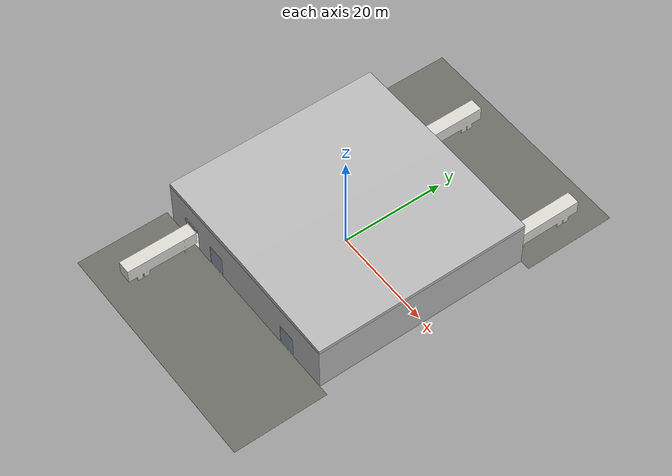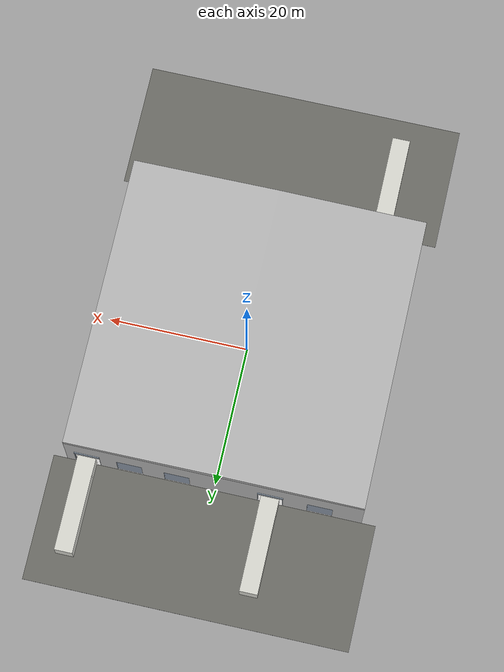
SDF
<sdf version="1.7">
 <world name="default">
  <gravity>0 0 -9.8</gravity>
  <physics name="default_physics" type="ignored">
   <max_step_size>0.001</max_step_size>
   <real_time_factor>1</real_time_factor>
  </physics>
  <plugin filename="ignition-gazebo-physics-system" name="gz::sim::systems::Physics"/>
  <plugin filename="ignition-gazebo-user-commands-system" name="gz::sim::systems::UserCommands"/>
  <plugin filename="ignition-gazebo-scene-broadcaster-system" name="gz::sim::systems::SceneBroadcaster"/>
  <plugin filename="ignition-gazebo-sensors-system" name="gz::sim::systems::Sensors">
   <render_engine>ogre2</render_engine>
  </plugin>
  <plugin filename="ignition-gazebo-imu-system" name="gz::sim::systems::Imu"/>
  <scene>
   <ambient>0.7 0.7 0.7 1</ambient>
   <background>0.25 0.28 0.32 1</background>
   <shadows>false</shadows>
   <grid>false</grid>
  </scene>
  <light name="warehouse_fill" type="directional">
   <cast_shadows>false</cast_shadows>
   <pose>0 0 20 0 0 0</pose>
   <diffuse>0.7 0.7 0.7 1</diffuse>
   <specular>0.15 0.15 0.15 1</specular>
   <direction>-0.4 0.3 -0.9</direction>
  </light>
  <light name="Warehouse_CeilingLight_003" type="point">
   <pose>0 0 8.5 0 0 0</pose>
   <diffuse>0.8 0.8 0.8 1</diffuse>
   <specular>0.2 0.2 0.2 1</specular>
   <attenuation>
    <range>80</range>
    <constant>0.4</constant>
    <linear>0.01</linear>
    <quadratic>0.001</quadratic>
   </attenuation>
   <cast_shadows>false</cast_shadows>
   <direction>0 0 -1</direction>
  </light>
  <plugin filename="LogisticsScheduler" name="logistics::LogisticsScheduler">
   <carrier name="aws_robomaker_warehouse_PalletJackB_01_217">
    <speed>1.30</speed>
    <turn_rate>1.5</turn_rate>
    <carry_offset>1.30 0 0</carry_offset>
    <handling_time>5.0</handling_time>
    <start>2.0</start>
    <job>
     <pick load="aws_robomaker_warehouse_ClutteringC_01_108">1.570796</pick>
     <goto reverse="true">-17.600 9.300</goto>
     <goto>-13.300 9.300</goto>
     <goto>-13.300 4.700</goto>
     <goto>-15.000 4.700</goto>
     <drop heading="3.141593">-16.300 4.700 0.000000</drop>
     <goto reverse="true">-13.300 4.700</goto>
     <goto>-13.300 1.500</goto>
     <goto>-15.000 1.500</goto>
     <pick load="aws_robomaker_warehouse_ClutteringA_01_202">3.141593</pick>
     <goto reverse="true">-13.300 1.500</goto>
     <goto>-13.300 9.300</goto>
     <goto>-17.600 9.300</goto>
     <goto>-17.600 11.900</goto>
     <drop heading="1.570796">-17.600 13.200 0.000000</drop>
     <goto reverse="true">-17.600 9.300</goto>
     <goto>-13.300 9.300</goto>
     <goto>-13.300 4.700</goto>
     <goto>-15.000 4.700</goto>
     <pick load="aws_robomaker_warehouse_ClutteringC_01_108">3.141593</pick>
     <goto reverse="true">-13.300 4.700</goto>
     <goto>-13.300 1.500</goto>
     <goto>-15.000 1.500</goto>
     <drop heading="3.141593">-16.300 1.500 0.000000</drop>
     <goto reverse="true">-13.300 1.500</goto>
     <goto>-13.300 9.300</goto>
     <goto>-17.600 9.300</goto>
     <goto>-17.600 11.900</goto>
     <pick load="aws_robomaker_warehouse_ClutteringA_01_202">1.570796</pick>
     <goto reverse="true">-17.600 9.300</goto>
     <goto>-13.300 9.300</goto>
     <goto>-13.300 4.700</goto>
     <goto>-15.000 4.700</goto>
     <drop heading="3.141593">-16.300 4.700 0.000000</drop>
     <goto reverse="true">-13.300 4.700</goto>
     <goto>-13.300 1.500</goto>
     <goto>-15.000 1.500</goto>
     <pick load="aws_robomaker_warehouse_ClutteringC_01_108">3.141593</pick>
     <goto reverse="true">-13.300 1.500</goto>
     <goto>-13.300 9.300</goto>
     <goto>-17.600 9.300</goto>
     <goto>-17.600 11.900</goto>
     <drop heading="1.570796">-17.600 13.200 0.000000</drop>
     <goto reverse="true">-17.600 9.300</goto>
     <goto>-13.300 9.300</goto>
     <goto>-13.300 4.700</goto>
     <goto>-15.000 4.700</goto>
     <pick load="aws_robomaker_warehouse_ClutteringA_01_202">3.141593</pick>
     <goto reverse="true">-13.300 4.700</goto>
     <goto>-13.300 1.500</goto>
     <goto>-15.000 1.500</goto>
     <drop heading="3.141593">-16.300 1.500 0.000000</drop>
     <goto reverse="true">-13.300 1.500</goto>
     <goto>-13.300 9.300</goto>
     <goto>-17.600 9.300</goto>
     <goto>-17.600 11.900</goto>
    </job>
   </carrier>
   <carrier name="aws_robomaker_warehouse_PalletJackB_01_218">
    <speed>1.30</speed>
    <turn_rate>1.5</turn_rate>
    <carry_offset>1.30 0 0</carry_offset>
    <handling_time>5.0</handling_time>
    <start>9.0</start>
    <job>
     <pick load="aws_robomaker_warehouse_ClutteringC_01_200">3.141593</pick>
     <goto reverse="true">-13.300 -1.700</goto>
     <goto>-13.300 -4.900</goto>
     <goto>-15.000 -4.900</goto>
     <drop heading="3.141593">-16.300 -4.900 0.000000</drop>
     <goto reverse="true">-13.300 -4.900</goto>
     <goto>-13.300 -9.400</goto>
     <goto>-17.600 -9.400</goto>
     <goto>-17.600 -13.900</goto>
     <pick load="aws_robomaker_warehouse_ClutteringD_01_173">-1.570796</pick>
     <goto reverse="true">-17.600 -9.400</goto>
     <goto>-13.300 -9.400</goto>
     <goto>-13.300 -1.700</goto>
     <goto>-15.000 -1.700</goto>
     <drop heading="3.141593">-16.300 -1.700 0.000000</drop>
     <goto reverse="true">-13.300 -1.700</goto>
     <goto>-13.300 -4.900</goto>
     <goto>-15.000 -4.900</goto>
     <pick load="aws_robomaker_warehouse_ClutteringC_01_200">3.141593</pick>
     <goto reverse="true">-13.300 -4.900</goto>
     <goto>-13.300 -9.400</goto>
     <goto>-17.600 -9.400</goto>
     <goto>-17.600 -13.900</goto>
     <drop heading="-1.570796">-17.600 -15.200 0.000000</drop>
     <goto reverse="true">-17.600 -9.400</goto>
     <goto>-13.300 -9.400</goto>
     <goto>-13.300 -1.700</goto>
     <goto>-15.000 -1.700</goto>
     <pick load="aws_robomaker_warehouse_ClutteringD_01_173">3.141593</pick>
     <goto reverse="true">-13.300 -1.700</goto>
     <goto>-13.300 -4.900</goto>
     <goto>-15.000 -4.900</goto>
     <drop heading="3.141593">-16.300 -4.900 0.000000</drop>
     <goto reverse="true">-13.300 -4.900</goto>
     <goto>-13.300 -9.400</goto>
     <goto>-17.600 -9.400</goto>
     <goto>-17.600 -13.900</goto>
     <pick load="aws_robomaker_warehouse_ClutteringC_01_200">-1.570796</pick>
     <goto reverse="true">-17.600 -9.400</goto>
     <goto>-13.300 -9.400</goto>
     <goto>-13.300 -1.700</goto>
     <goto>-15.000 -1.700</goto>
     <drop heading="3.141593">-16.300 -1.700 0.000000</drop>
     <goto reverse="true">-13.300 -1.700</goto>
     <goto>-13.300 -4.900</goto>
     <goto>-15.000 -4.900</goto>
     <pick load="aws_robomaker_warehouse_ClutteringD_01_173">3.141593</pick>
     <goto reverse="true">-13.300 -4.900</goto>
     <goto>-13.300 -9.400</goto>
     <goto>-17.600 -9.400</goto>
     <goto>-17.600 -13.900</goto>
     <drop heading="-1.570796">-17.600 -15.200 0.000000</drop>
     <goto reverse="true">-17.600 -9.400</goto>
     <goto>-13.300 -9.400</goto>
     <goto>-13.300 -1.700</goto>
     <goto>-15.000 -1.700</goto>
    </job>
   </carrier>
   <carrier name="aws_robomaker_warehouse_PalletJackB_01_219">
    <speed>1.20</speed>
    <turn_rate>1.5</turn_rate>
    <carry_offset>1.30 0 0</carry_offset>
    <handling_time>4.0</handling_time>
    <start>5.0</start>
    <job>
     <pick load="aws_robomaker_warehouse_Bucket_01_170">-1.570796</pick>
     <goto reverse="true">-3.300 -9.750</goto>
     <goto>10.780 -9.750</goto>
     <goto>10.780 -15.000</goto>
     <goto>11.000 -15.000</goto>
     <drop heading="-1.570796">11.000 -16.300 0.000000</drop>
     <goto>11.000 -15.000</goto>
     <goto>8.500 -15.000</goto>
     <pick load="aws_robomaker_warehouse_Bucket_01_188">-1.570796</pick>
     <goto>8.500 -15.000</goto>
     <goto>10.780 -15.000</goto>
     <goto>10.780 -9.750</goto>
     <goto>-3.300 -9.750</goto>
     <goto>-3.300 -10.550</goto>
     <drop heading="-1.570796">-3.300 -11.850 0.000000</drop>
     <goto reverse="true">-3.300 -9.750</goto>
     <goto>10.780 -9.750</goto>
     <goto>10.780 -15.000</goto>
     <goto>11.000 -15.000</goto>
     <pick load="aws_robomaker_warehouse_Bucket_01_170">-1.570796</pick>
     <goto>11.000 -15.000</goto>
     <goto>8.500 -15.000</goto>
     <drop heading="-1.570796">8.500 -16.300 0.000000</drop>
     <goto>8.500 -15.000</goto>
     <goto>10.780 -15.000</goto>
     <goto>10.780 -9.750</goto>
     <goto>-3.300 -9.750</goto>
     <goto>-3.300 -10.550</goto>
     <pick load="aws_robomaker_warehouse_Bucket_01_188">-1.570796</pick>
     <goto reverse="true">-3.300 -9.750</goto>
     <goto>10.780 -9.750</goto>
     <goto>10.780 -15.000</goto>
     <goto>11.000 -15.000</goto>
     <drop heading="-1.570796">11.000 -16.300 0.000000</drop>
     <goto>11.000 -15.000</goto>
     <goto>8.500 -15.000</goto>
     <pick load="aws_robomaker_warehouse_Bucket_01_170">-1.570796</pick>
     <goto>8.500 -15.000</goto>
     <goto>10.780 -15.000</goto>
     <goto>10.780 -9.750</goto>
     <goto>-3.300 -9.750</goto>
     <goto>-3.300 -10.550</goto>
     <drop heading="-1.570796">-3.300 -11.850 0.000000</drop>
     <goto reverse="true">-3.300 -9.750</goto>
     <goto>10.780 -9.750</goto>
     <goto>10.780 -15.000</goto>
     <goto>11.000 -15.000</goto>
     <pick load="aws_robomaker_warehouse_Bucket_01_188">-1.570796</pick>
     <goto>11.000 -15.000</goto>
     <goto>8.500 -15.000</goto>
     <drop heading="-1.570796">8.500 -16.300 0.000000</drop>
     <goto>8.500 -15.000</goto>
     <goto>10.780 -15.000</goto>
     <goto>10.780 -9.750</goto>
     <goto>-3.300 -9.750</goto>
     <goto>-3.300 -10.550</goto>
    </job>
   </carrier>
   <carrier name="aws_robomaker_warehouse_PalletJackB_01_220">
    <speed>1.20</speed>
    <turn_rate>1.5</turn_rate>
    <carry_offset>1.30 0 0</carry_offset>
    <handling_time>4.0</handling_time>
    <start>13.0</start>
    <job>
     <pick load="aws_robomaker_warehouse_Bucket_01_172">-1.570796</pick>
     <goto reverse="true">1.900 -9.750</goto>
     <goto>15.340 -9.750</goto>
     <goto>15.340 -15.000</goto>
     <goto>14.000 -15.000</goto>
     <drop heading="-1.570796">14.000 -16.300 0.000000</drop>
     <goto>14.000 -15.000</goto>
     <goto>16.600 -15.000</goto>
     <pick load="aws_robomaker_warehouse_Bucket_01_189">-1.570796</pick>
     <goto>16.600 -15.000</goto>
     <goto>15.340 -15.000</goto>
     <goto>15.340 -9.750</goto>
     <goto>1.900 -9.750</goto>
     <goto>1.900 -10.550</goto>
     <drop heading="-1.570796">1.900 -11.850 0.000000</drop>
     <goto reverse="true">1.900 -9.750</goto>
     <goto>15.340 -9.750</goto>
     <goto>15.340 -15.000</goto>
     <goto>14.000 -15.000</goto>
     <pick load="aws_robomaker_warehouse_Bucket_01_172">-1.570796</pick>
     <goto>14.000 -15.000</goto>
     <goto>16.600 -15.000</goto>
     <drop heading="-1.570796">16.600 -16.300 0.000000</drop>
     <goto>16.600 -15.000</goto>
     <goto>15.340 -15.000</goto>
     <goto>15.340 -9.750</goto>
     <goto>1.900 -9.750</goto>
     <goto>1.900 -10.550</goto>
     <pick load="aws_robomaker_warehouse_Bucket_01_189">-1.570796</pick>
     <goto reverse="true">1.900 -9.750</goto>
     <goto>15.340 -9.750</goto>
     <goto>15.340 -15.000</goto>
     <goto>14.000 -15.000</goto>
     <drop heading="-1.570796">14.000 -16.300 0.000000</drop>
     <goto>14.000 -15.000</goto>
     <goto>16.600 -15.000</goto>
     <pick load="aws_robomaker_warehouse_Bucket_01_172">-1.570796</pick>
     <goto>16.600 -15.000</goto>
     <goto>15.340 -15.000</goto>
     <goto>15.340 -9.750</goto>
     <goto>1.900 -9.750</goto>
     <goto>1.900 -10.550</goto>
     <drop heading="-1.570796">1.900 -11.850 0.000000</drop>
     <goto reverse="true">1.900 -9.750</goto>
     <goto>15.340 -9.750</goto>
     <goto>15.340 -15.000</goto>
     <goto>14.000 -15.000</goto>
     <pick load="aws_robomaker_warehouse_Bucket_01_189">-1.570796</pick>
     <goto>14.000 -15.000</goto>
     <goto>16.600 -15.000</goto>
     <drop heading="-1.570796">16.600 -16.300 0.000000</drop>
     <goto>16.600 -15.000</goto>
     <goto>15.340 -15.000</goto>
     <goto>15.340 -9.750</goto>
     <goto>1.900 -9.750</goto>
     <goto>1.900 -10.550</goto>
    </job>
   </carrier>
  </plugin>
  <include>
   <uri>model://aws_robomaker_warehouse_RoofB_01</uri>
   <name>aws_robomaker_warehouse_RoofB_01_001</name>
  </include>
  <include>
   <uri>model://aws_robomaker_warehouse_GroundB_01_plain</uri>
   <name>aws_robomaker_warehouse_GroundB_01_plain_001</name>
   <pose>0.0 0.0 -0.090092 0 0 0</pose>
  </include>
  <include>
   <uri>model://aws_robomaker_warehouse_WallB_01_docks_i</uri>
   <name>aws_robomaker_warehouse_WallB_01_001</name>
  </include>
  <include>
   <uri>model://aws_robomaker_warehouse_DockDoor_01</uri>
   <name>aws_robomaker_warehouse_DockDoor_01_204</name>
   <pose>-15.000000 20.774500 0.000000 0 0 0.000000</pose>
  </include>
  <include>
   <uri>model://aws_robomaker_warehouse_DockDoorOpen_01</uri>
   <name>aws_robomaker_warehouse_DockDoorOpen_01_205</name>
   <pose>-8.000000 20.774500 0.000000 0 0 0.000000</pose>
  </include>
  <include>
   <uri>model://aws_robomaker_warehouse_Trailer_01</uri>
   <name>aws_robomaker_warehouse_Trailer_01_206</name>
   <pose>-8.000000 20.957000 0.000000 0 0 0.000000</pose>
  </include>
  <include>
   <uri>model://aws_robomaker_warehouse_DockDoor_01</uri>
   <name>aws_robomaker_warehouse_DockDoor_01_207</name>
   <pose>5.250000 20.774500 0.000000 0 0 0.000000</pose>
  </include>
  <include>
   <uri>model://aws_robomaker_warehouse_DockDoor_01</uri>
   <name>aws_robomaker_warehouse_DockDoor_01_208</name>
   <pose>12.000000 20.774500 0.000000 0 0 0.000000</pose>
  </include>
  <include>
   <uri>model://aws_robomaker_warehouse_DockDoorOpen_01</uri>
   <name>aws_robomaker_warehouse_DockDoorOpen_01_209</name>
   <pose>18.000000 20.774500 0.000000 0 0 0.000000</pose>
  </include>
  <include>
   <uri>model://aws_robomaker_warehouse_Trailer_01</uri>
   <name>aws_robomaker_warehouse_Trailer_01_210</name>
   <pose>18.000000 20.957000 0.000000 0 0 0.000000</pose>
  </include>
  <include>
   <uri>model://aws_robomaker_warehouse_DockYard_01</uri>
   <name>aws_robomaker_warehouse_DockYard_01_211</name>
  </include>
  <include>
   <uri>model://aws_robomaker_warehouse_DockDoorOpen_01</uri>
   <name>aws_robomaker_warehouse_DockDoorOpen_01_212</name>
   <pose>-15.000000 -20.774500 0.000000 0 0 3.141593</pose>
  </include>
  <include>
   <uri>model://aws_robomaker_warehouse_Trailer_01</uri>
   <name>aws_robomaker_warehouse_Trailer_01_213</name>
   <pose>-15.000000 -20.957000 0.000000 0 0 3.141593</pose>
  </include>
  <include>
   <uri>model://aws_robomaker_warehouse_DockDoor_01</uri>
   <name>aws_robomaker_warehouse_DockDoor_01_214</name>
   <pose>-8.000000 -20.774500 0.000000 0 0 3.141593</pose>
  </include>
  <include>
   <uri>model://aws_robomaker_warehouse_DockDoor_01</uri>
   <name>aws_robomaker_warehouse_DockDoor_01_215</name>
   <pose>12.000000 -20.774500 0.000000 0 0 3.141593</pose>
  </include>
  <include>
   <uri>model://aws_robomaker_warehouse_DockYard_01</uri>
   <name>aws_robomaker_warehouse_DockYard_01_216</name>
   <pose>0.000000 0.000000 0.000000 0 0 3.141593</pose>
  </include>
  <include>
   <uri>model://ackermann_robot</uri>
   <name>ackermann_robot_001</name>
   <pose>5.25 20 0 0 0 -1.5708</pose>
  </include>
 </world>
</sdf>

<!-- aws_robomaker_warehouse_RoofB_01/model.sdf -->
<sdf version="1.6">
  <model name="aws_robomaker_warehouse_RoofB_01">
    <link name="link">
      <inertial>
        <mass>1000</mass>
        <pose frame=''>0 0 0 0 0 0</pose>
        <inertia>
          <ixx>36525.692</ixx>
          <ixy>0</ixy>
          <ixz>0</ixz>
          <iyy>52711.849</iyy>
          <iyz>0</iyz>
          <izz>16389.433</izz>
        </inertia>
      </inertial>
      <collision name="collision">
        <geometry>
          <mesh>
            <uri>model://model_tiny/aws_robomaker_warehouse_RoofB_01/meshes/aws_robomaker_warehouse_RoofB_01_collision.DAE</uri>
            <scale>1 1 1</scale>
          </mesh>
        </geometry>
		<surface>
          <friction>
            <ode>
              <mu>0.6</mu>
              <mu2>0.6</mu2>
              <fdir1>0 0 0</fdir1>
              <slip1>0</slip1>
              <slip2>0</slip2>
            </ode>
            <torsional>
              <coefficient>1</coefficient>
              <patch_radius>0</patch_radius>
              <surface_radius>0</surface_radius>
              <use_patch_radius>1</use_patch_radius>
              <ode>
                <slip>0</slip>
              </ode>
            </torsional>
          </friction>
        </surface>
      </collision>
      <visual name="visual">
	    <geometry>
          <mesh>
            <uri>model://model_tiny/aws_robomaker_warehouse_RoofB_01/meshes/aws_robomaker_warehouse_RoofB_01_visual.DAE</uri>
          </mesh>
        </geometry>
      <meta> <layer> 3 </layer></meta>
    </visual>
    </link>
    <static>1</static>
  </model>
</sdf>

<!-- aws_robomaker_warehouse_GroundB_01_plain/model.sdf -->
<sdf version="1.7">
  <model name="aws_robomaker_warehouse_GroundB_01_plain">
    <link name="link">
      <inertial>
        <mass>1000</mass>
		<inertia>
          <ixx>36425.342</ixx>
          <ixy>0</ixy>
          <ixz>0</ixz>
          <iyy>16289.083</iyy>
          <iyz>0</iyz>
          <izz>52711.849</izz>
        </inertia>
      </inertial>
      <collision name="collision">
        <geometry>
          <mesh>
            <uri>model://aws_robomaker_warehouse_GroundB_01_plain/meshes/aws_robomaker_warehouse_GroundB_01_plain_collision.DAE</uri>
            <scale>1 1 1</scale>
          </mesh>
        </geometry>
        <surface>
          <friction>
            <ode>
              <mu>100</mu>
              <mu2>50</mu2>
              <fdir1>0 0 0</fdir1>
              <slip1>0</slip1>
              <slip2>0</slip2>
            </ode>
          </friction>
        </surface>
      </collision>
      <visual name="visual">
	    <geometry>
          <mesh>
            <uri>model://aws_robomaker_warehouse_GroundB_01_plain/meshes/aws_robomaker_warehouse_GroundB_01_plain_visual.DAE</uri>
          </mesh>
        </geometry>
</visual>
    </link>
<static>1</static>
  </model>
</sdf>

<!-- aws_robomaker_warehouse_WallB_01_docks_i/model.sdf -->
<sdf version="1.7">
  <model name="aws_robomaker_warehouse_WallB_01_docks_i">
    <static>true</static>
    <link name="link">
      <collision name="collision">
        <geometry><mesh><uri>model://aws_robomaker_warehouse_WallB_01_docks_i/meshes/aws_robomaker_warehouse_WallB_01_docks_i_collision.DAE</uri></mesh></geometry>
      </collision>
      <visual name="visual">
        <geometry><mesh><uri>model://aws_robomaker_warehouse_WallB_01_docks_i/meshes/aws_robomaker_warehouse_WallB_01_docks_i_visual.DAE</uri></mesh></geometry>
      </visual>
    </link>
  </model>
</sdf>

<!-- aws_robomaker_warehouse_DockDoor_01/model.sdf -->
<sdf version="1.7">
  <model name="aws_robomaker_warehouse_DockDoor_01">
    <static>true</static>
    <link name="link">
      <collision name="collision">
        <geometry><mesh><uri>model://aws_robomaker_warehouse_DockDoor_01/meshes/aws_robomaker_warehouse_DockDoor_01_collision.DAE</uri></mesh></geometry>
      </collision>
      <visual name="visual">
        <geometry><mesh><uri>model://aws_robomaker_warehouse_DockDoor_01/meshes/aws_robomaker_warehouse_DockDoor_01_visual.DAE</uri></mesh></geometry>
      </visual>
    </link>
  </model>
</sdf>

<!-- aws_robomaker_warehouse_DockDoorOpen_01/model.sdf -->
<sdf version="1.7">
  <model name="aws_robomaker_warehouse_DockDoorOpen_01">
    <static>true</static>
    <link name="link">
      <collision name="collision">
        <geometry><mesh><uri>model://aws_robomaker_warehouse_DockDoorOpen_01/meshes/aws_robomaker_warehouse_DockDoorOpen_01_collision.DAE</uri></mesh></geometry>
      </collision>
      <visual name="visual">
        <geometry><mesh><uri>model://aws_robomaker_warehouse_DockDoorOpen_01/meshes/aws_robomaker_warehouse_DockDoorOpen_01_visual.DAE</uri></mesh></geometry>
      </visual>
    </link>
  </model>
</sdf>

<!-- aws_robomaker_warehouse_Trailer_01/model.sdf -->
<sdf version="1.7">
  <model name="aws_robomaker_warehouse_Trailer_01">
    <static>true</static>
    <link name="link">
      <collision name="collision">
        <geometry><mesh><uri>model://aws_robomaker_warehouse_Trailer_01/meshes/aws_robomaker_warehouse_Trailer_01_collision.DAE</uri></mesh></geometry>
      </collision>
      <visual name="visual">
        <geometry><mesh><uri>model://aws_robomaker_warehouse_Trailer_01/meshes/aws_robomaker_warehouse_Trailer_01_visual.DAE</uri></mesh></geometry>
      </visual>
    </link>
  </model>
</sdf>

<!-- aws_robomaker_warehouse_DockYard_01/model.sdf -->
<sdf version="1.7">
  <model name="aws_robomaker_warehouse_DockYard_01">
    <static>true</static>
    <link name="link">
      <collision name="collision">
        <geometry><mesh><uri>model://aws_robomaker_warehouse_DockYard_01/meshes/aws_robomaker_warehouse_DockYard_01_collision.DAE</uri></mesh></geometry>
      </collision>
      <visual name="visual">
        <geometry><mesh><uri>model://aws_robomaker_warehouse_DockYard_01/meshes/aws_robomaker_warehouse_DockYard_01_visual.DAE</uri></mesh></geometry>
      </visual>
    </link>
  </model>
</sdf>

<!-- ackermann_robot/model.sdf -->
<sdf version='1.9'>
  <model name='ackermann_robot'>
    <link name='base_footprint'>
      <inertial>
        <pose>0.003346535 0 0.097940594 0 0 0</pose>
        <mass>10.1</mass>
        <inertia>
          <ixx>0.148403564</ixx>
          <ixy>0</ixy>
          <ixz>-0.003179208</ixz>
          <iyy>0.314714851</iyy>
          <iyz>0</iyz>
          <izz>0.453831287</izz>
        </inertia>
      </inertial>
      <collision name='base_footprint_fixed_joint_lump__base_link_collision'>
        <pose>0 0 0.097 0 0 0</pose>
        <geometry>
          <box>
            <size>0.6 0.463 0.05</size>
          </box>
        </geometry>
        <surface>
          <contact>
            <ode/>
          </contact>
          <friction>
            <ode/>
          </friction>
        </surface>
      </collision>
      <collision name='base_footprint_fixed_joint_lump__cam_link1_collision_1'>
        <pose>0.409 0 0.3815 0 0 0</pose>
        <geometry>
          <box>
            <size>0.2025 0.02 0.02</size>
          </box>
        </geometry>
      </collision>
      <collision name='base_footprint_fixed_joint_lump__cam_link2_collision_2'>
        <pose>0.496 0 0.3815 0 0 0</pose>
        <geometry>
          <box>
            <size>0.087 0.02 0.02</size>
          </box>
        </geometry>
      </collision>
      <collision name='base_footprint_fixed_joint_lump__cam0_collision_3'>
        <pose>0.496 0.0936 0.4395 0 0 0</pose>
        <geometry>
          <box>
            <size>0.02 0.02 0.02</size>
          </box>
        </geometry>
      </collision>
      <collision name='cam1_collision'>
        <pose>0.496 0 0.4395 0 0 0</pose>
        <geometry>
          <box>
            <size>0.02 0.02 0.02</size>
          </box>
        </geometry>
      </collision>
      <collision name='base_footprint_fixed_joint_lump__cam0_depth_collision_4'>
        <pose>0.496 0.0936 0.4395 -1.5707963268 0 -1.5707963268</pose>
        <geometry>
          <box>
            <size>0.028 0.028 0.028</size>
          </box>
        </geometry>
      </collision>
      <collision name='base_footprint_fixed_joint_lump__cam0_undis_collision_5'>
        <pose>0.496 0.0936 0.4395 -1.5707963268 0 -1.5707963268</pose>
        <geometry>
          <box>
            <size>0.028 0.028 0.028</size>
          </box>
        </geometry>
      </collision>
      <collision name='base_footprint_fixed_joint_lump__imu_link_collision_6'>
        <pose>0.338 0 0.192 0 0 0</pose>
        <geometry>
          <box>
            <size>0.05 0.05 0.02</size>
          </box>
        </geometry>
        <surface>
          <contact>
            <ode/>
          </contact>
          <friction>
            <ode/>
          </friction>
        </surface>
      </collision>
      <visual name='base_footprint_fixed_joint_lump__base_link_visual'>
        <pose>0 0 0.097 0 0 0</pose>
        <geometry>
          <box>
            <size>0.6 0.463 0.05</size>
          </box>
        </geometry>
        <material>
          <diffuse>0 0 1 1</diffuse>
          <ambient>0 0 1 1</ambient>
        </material>
      </visual>
      <visual name='base_footprint_fixed_joint_lump__cam_link1_visual_1'>
        <pose>0.409 0 0.3815 0 0 0</pose>
        <geometry>
          <box>
            <size>0.2025 0.02 0.02</size>
          </box>
        </geometry>
        <material>
          <diffuse>0 0 1 1</diffuse>
          <ambient>0 0 1 1</ambient>
        </material>
      </visual>
      <visual name='base_footprint_fixed_joint_lump__cam_link2_visual_2'>
        <pose>0.496 0 0.3815 0 0 0</pose>
        <geometry>
          <box>
            <size>0.087 0.02 0.02</size>
          </box>
        </geometry>
        <material>
          <diffuse>0 0 1 1</diffuse>
          <ambient>0 0 1 1</ambient>
        </material>
      </visual>
      <visual name='base_footprint_fixed_joint_lump__cam0_visual_3'>
        <pose>0.496 0.0936 0.4395 0 0 0</pose>
        <geometry>
          <box>
            <size>0.02 0.02 0.02</size>
          </box>
        </geometry>
        <material>
          <diffuse>0 0 1 1</diffuse>
          <ambient>0 0 1 1</ambient>
        </material>
      </visual>
      <visual name='cam1_visual'>
        <pose>0.496 0 0.4395 0 0 0</pose>
        <geometry>
          <box>
            <size>0.02 0.02 0.02</size>
          </box>
        </geometry>
        <material>
          <diffuse>0 0 1 1</diffuse>
          <ambient>0 0 1 1</ambient>
        </material>
      </visual>
      <visual name='base_footprint_fixed_joint_lump__cam0_depth_visual_4'>
        <pose>0.496 0.0936 0.4395 -1.5707963268 0 -1.5707963268</pose>
        <geometry>
          <box>
            <size>0.028 0.028 0.028</size>
          </box>
        </geometry>
        <material>
          <diffuse>0 1 0 1</diffuse>
          <ambient>0 1 0 1</ambient>
        </material>
      </visual>
      <visual name='base_footprint_fixed_joint_lump__cam0_undis_visual_5'>
        <pose>0.496 0.0936 0.4395 -1.5707963268 0 -1.5707963268</pose>
        <geometry>
          <box>
            <size>0.028 0.028 0.028</size>
          </box>
        </geometry>
        <material>
          <diffuse>0 1 0 1</diffuse>
          <ambient>0 1 0 1</ambient>
        </material>
      </visual>
      <visual name='base_footprint_fixed_joint_lump__imu_link_visual_6'>
        <pose>0.338 0 0.192 0 0 0</pose>
        <geometry>
          <box>
            <size>0.05 0.05 0.02</size>
          </box>
        </geometry>
        <material>
          <diffuse>0 1 0 1</diffuse>
          <ambient>0 1 0 1</ambient>
        </material>
      </visual>

      <sensor name='cam0' type='camera'>
        <pose relative_to='cam0'>0 0 0 0 -0 0</pose>
        <topic>cam0/image_raw</topic>
        <update_rate>30</update_rate>
        <always_on>1</always_on>
        <visualize>0</visualize>
        <camera>
          <horizontal_fov>1.5707963268</horizontal_fov>
          <image>
            <width>1280</width>
            <height>720</height>
            <format>R8G8B8</format>
          </image>
          <clip>
            <near>0.05</near>
            <far>100</far>
          </clip>
          <!-- A little sensor noise so the feature tracker is not fed a
               noiseless render, which is unrealistically easy. -->
          <noise>
            <type>gaussian</type>
            <mean>0</mean>
            <stddev>0.005</stddev>
          </noise>
        </camera>
      </sensor>

      <sensor name='cam1' type='camera'>
        <pose relative_to='cam1'>0 0 0 0 -0 0</pose>
        <topic>cam1/image_raw</topic>
        <update_rate>30</update_rate>
        <always_on>1</always_on>
        <visualize>0</visualize>
        <camera>
          <horizontal_fov>1.5707963268</horizontal_fov>
          <image>
            <width>1280</width>
            <height>720</height>
            <format>R8G8B8</format>
          </image>
          <clip>
            <near>0.05</near>
            <far>100</far>
          </clip>
          <noise>
            <type>gaussian</type>
            <mean>0</mean>
            <stddev>0.005</stddev>
          </noise>
        </camera>
      </sensor>

      <sensor name='imu' type='imu'>
        <pose relative_to='imu_link'>0 0 0 0 -0 0</pose>
        <topic>imu</topic>
        <update_rate>200</update_rate>
        <always_on>1</always_on>
        <imu>
          <angular_velocity>
            <x>
              <noise type='gaussian'>
                <mean>0</mean>
                <stddev>0.0048</stddev>
                <dynamic_bias_stddev>3.8785e-05</dynamic_bias_stddev>
                <dynamic_bias_correlation_time>1000</dynamic_bias_correlation_time>
              </noise>
            </x>
            <y>
              <noise type='gaussian'>
                <mean>0</mean>
                <stddev>0.0048</stddev>
                <dynamic_bias_stddev>3.8785e-05</dynamic_bias_stddev>
                <dynamic_bias_correlation_time>1000</dynamic_bias_correlation_time>
              </noise>
            </y>
            <z>
              <noise type='gaussian'>
                <mean>0</mean>
                <stddev>0.0048</stddev>
                <dynamic_bias_stddev>3.8785e-05</dynamic_bias_stddev>
                <dynamic_bias_correlation_time>1000</dynamic_bias_correlation_time>
              </noise>
            </z>
          </angular_velocity>
          <linear_acceleration>
            <x>
              <noise type='gaussian'>
                <mean>0</mean>
                <stddev>0.0566</stddev>
                <dynamic_bias_stddev>0.006</dynamic_bias_stddev>
                <dynamic_bias_correlation_time>300</dynamic_bias_correlation_time>
              </noise>
            </x>
            <y>
              <noise type='gaussian'>
                <mean>0</mean>
                <stddev>0.0566</stddev>
                <dynamic_bias_stddev>0.006</dynamic_bias_stddev>
                <dynamic_bias_correlation_time>300</dynamic_bias_correlation_time>
              </noise>
            </y>
            <z>
              <noise type='gaussian'>
                <mean>0</mean>
                <stddev>0.0566</stddev>
                <dynamic_bias_stddev>0.006</dynamic_bias_stddev>
                <dynamic_bias_correlation_time>300</dynamic_bias_correlation_time>
              </noise>
            </z>
          </linear_acceleration>
        </imu>
      </sensor>
    </link>
    <joint name='front_left_steering_joint' type='revolute'>
      <pose relative_to='base_footprint'>0.21 0.21 0.072 0 0 0</pose>
      <parent>base_footprint</parent>
      <child>front_left_steering_knuckle</child>
      <axis>
        <xyz>0 0 1</xyz>
        <limit>
          <lower>-0.6109</lower>
          <upper>0.6109</upper>
          <effort>100</effort>
          <velocity>1</velocity>
        </limit>
        <dynamics>
          <damping>0.1</damping>
          <friction>0.01</friction>
          <spring_reference>0</spring_reference>
          <spring_stiffness>0</spring_stiffness>
        </dynamics>
      </axis>
    </joint>
    <link name='front_left_steering_knuckle'>
      <pose relative_to='front_left_steering_joint'>0 0 0 0 0 0</pose>
      <inertial>
        <pose>0 0 0 0 0 0</pose>
        <mass>0.2</mass>
        <inertia>
          <ixx>0.0002</ixx>
          <ixy>0</ixy>
          <ixz>0</ixz>
          <iyy>0.0002</iyy>
          <iyz>0</iyz>
          <izz>0.0001</izz>
        </inertia>
      </inertial>
      <collision name='front_left_steering_knuckle_collision'>
        <pose>0 0 0 0 0 0</pose>
        <geometry>
          <box>
            <size>0.05 0.05 0.1</size>
          </box>
        </geometry>
        <surface>
          <contact>
            <ode/>
          </contact>
          <friction>
            <ode/>
          </friction>
        </surface>
      </collision>
      <visual name='front_left_steering_knuckle_visual'>
        <pose>0 0 0 0 0 0</pose>
        <geometry>
          <box>
            <size>0.05 0.05 0.1</size>
          </box>
        </geometry>
        <material>
          <diffuse>0.625 0.625 0.625 1</diffuse>
          <ambient>0.625 0.625 0.625 1</ambient>
        </material>
      </visual>
    </link>
    <joint name='front_left_wheel_joint' type='revolute'>
      <pose relative_to='front_left_steering_knuckle'>0 0 0 -1.5708 0 0</pose>
      <parent>front_left_steering_knuckle</parent>
      <child>front_left_wheel</child>
      <axis>
        <xyz>0 0 1</xyz>
        <limit>
          <lower>-10000000000000000</lower>
          <upper>10000000000000000</upper>
        </limit>
        <dynamics>
          <damping>0.0</damping>
          <friction>0.0</friction>
          <spring_reference>0</spring_reference>
          <spring_stiffness>0</spring_stiffness>
        </dynamics>
      </axis>
    </joint>
    <link name='front_left_wheel'>
      <pose relative_to='front_left_wheel_joint'>0 0 0 0 0 0</pose>
      <inertial>
        <pose>0 0 0 0 0 0</pose>
        <mass>0.5</mass>
        <inertia>
          <ixx>0.000531</ixx>
          <ixy>0</ixy>
          <ixz>0</ixz>
          <iyy>0.000531</iyy>
          <iyz>0</iyz>
          <izz>0.000856</izz>
        </inertia>
      </inertial>
      <collision name='front_left_wheel_collision'>
        <pose>0 0 0 0 0 0</pose>
        <geometry>
          <cylinder>
            <length>0.065</length>
            <radius>0.0585</radius>
          </cylinder>
        </geometry>
        <surface>
          <contact>
            <ode/>
          </contact>
          <friction>
            <ode>
              <mu>1</mu>
              <mu2>1</mu2>
            </ode>
          </friction>
        </surface>
      </collision>
      <visual name='front_left_wheel_visual'>
        <pose>0 0 0 0 0 0</pose>
        <geometry>
          <cylinder>
            <length>0.065</length>
            <radius>0.0585</radius>
          </cylinder>
        </geometry>
        <material>
          <diffuse>0 0 0 1</diffuse>
          <ambient>0 0 0 1</ambient>
        </material>
      </visual>
    </link>
    <joint name='front_right_steering_joint' type='revolute'>
      <pose relative_to='base_footprint'>0.21 -0.21 0.072 0 0 0</pose>
      <parent>base_footprint</parent>
      <child>front_right_steering_knuckle</child>
      <axis>
        <xyz>0 0 1</xyz>
        <limit>
          <lower>-0.6109</lower>
          <upper>0.6109</upper>
          <effort>100</effort>
          <velocity>1</velocity>
        </limit>
        <dynamics>
          <damping>0.1</damping>
          <friction>0.01</friction>
          <spring_reference>0</spring_reference>
          <spring_stiffness>0</spring_stiffness>
        </dynamics>
      </axis>
    </joint>
    <link name='front_right_steering_knuckle'>
      <pose relative_to='front_right_steering_joint'>0 0 0 0 0 0</pose>
      <inertial>
        <pose>0 0 0 0 0 0</pose>
        <mass>0.2</mass>
        <inertia>
          <ixx>0.0002</ixx>
          <ixy>0</ixy>
          <ixz>0</ixz>
          <iyy>0.0002</iyy>
          <iyz>0</iyz>
          <izz>0.0001</izz>
        </inertia>
      </inertial>
      <collision name='front_right_steering_knuckle_collision'>
        <pose>0 0 0 0 0 0</pose>
        <geometry>
          <box>
            <size>0.05 0.05 0.1</size>
          </box>
        </geometry>
        <surface>
          <contact>
            <ode/>
          </contact>
          <friction>
            <ode/>
          </friction>
        </surface>
      </collision>
      <visual name='front_right_steering_knuckle_visual'>
        <pose>0 0 0 0 0 0</pose>
        <geometry>
          <box>
            <size>0.05 0.05 0.1</size>
          </box>
        </geometry>
        <material>
          <diffuse>0.625 0.625 0.625 1</diffuse>
          <ambient>0.625 0.625 0.625 1</ambient>
        </material>
      </visual>
    </link>
    <joint name='front_right_wheel_joint' type='revolute'>
      <pose relative_to='front_right_steering_knuckle'>0 0 0 -1.5708 0 0</pose>
      <parent>front_right_steering_knuckle</parent>
      <child>front_right_wheel</child>
      <axis>
        <xyz>0 0 1</xyz>
        <limit>
          <lower>-10000000000000000</lower>
          <upper>10000000000000000</upper>
        </limit>
        <dynamics>
          <damping>0.0</damping>
          <friction>0.0</friction>
          <spring_reference>0</spring_reference>
          <spring_stiffness>0</spring_stiffness>
        </dynamics>
      </axis>
    </joint>
    <link name='front_right_wheel'>
      <pose relative_to='front_right_wheel_joint'>0 0 0 0 0 0</pose>
      <inertial>
        <pose>0 0 0 0 0 0</pose>
        <mass>0.5</mass>
        <inertia>
          <ixx>0.000531</ixx>
          <ixy>0</ixy>
          <ixz>0</ixz>
          <iyy>0.000531</iyy>
          <iyz>0</iyz>
          <izz>0.000856</izz>
        </inertia>
      </inertial>
      <collision name='front_right_wheel_collision'>
        <pose>0 0 0 0 0 0</pose>
        <geometry>
          <cylinder>
            <length>0.065</length>
            <radius>0.0585</radius>
          </cylinder>
        </geometry>
        <surface>
          <contact>
            <ode/>
          </contact>
          <friction>
            <ode>
              <mu>1</mu>
              <mu2>1</mu2>
            </ode>
          </friction>
        </surface>
      </collision>
      <visual name='front_right_wheel_visual'>
        <pose>0 0 0 0 0 0</pose>
        <geometry>
          <cylinder>
            <length>0.065</length>
            <radius>0.0585</radius>
          </cylinder>
        </geometry>
        <material>
          <diffuse>0 0 0 1</diffuse>
          <ambient>0 0 0 1</ambient>
        </material>
      </visual>
    </link>
    <joint name='rear_left_wheel_joint' type='revolute'>
      <pose relative_to='base_footprint'>-0.21 0.21 0.072 -1.5708 0 0</pose>
      <parent>base_footprint</parent>
      <child>rear_left_wheel</child>
      <axis>
        <xyz>0 0 1</xyz>
        <limit>
          <lower>-10000000000000000</lower>
          <upper>10000000000000000</upper>
        </limit>
        <dynamics>
          <damping>0.0</damping>
          <friction>0.0</friction>
          <spring_reference>0</spring_reference>
          <spring_stiffness>0</spring_stiffness>
        </dynamics>
      </axis>
    </joint>
    <link name='rear_left_wheel'>
      <pose relative_to='rear_left_wheel_joint'>0 0 0 0 0 0</pose>
      <inertial>
        <pose>0 0 0 0 0 0</pose>
        <mass>0.5</mass>
        <inertia>
          <ixx>0.000531</ixx>
          <ixy>0</ixy>
          <ixz>0</ixz>
          <iyy>0.000531</iyy>
          <iyz>0</iyz>
          <izz>0.000856</izz>
        </inertia>
      </inertial>
      <collision name='rear_left_wheel_collision'>
        <pose>0 0 0 0 0 0</pose>
        <geometry>
          <cylinder>
            <length>0.065</length>
            <radius>0.0585</radius>
          </cylinder>
        </geometry>
        <surface>
          <contact>
            <ode/>
          </contact>
          <friction>
            <ode>
              <mu>1</mu>
              <mu2>1</mu2>
            </ode>
          </friction>
        </surface>
      </collision>
      <visual name='rear_left_wheel_visual'>
        <pose>0 0 0 0 0 0</pose>
        <geometry>
          <cylinder>
            <length>0.065</length>
            <radius>0.0585</radius>
          </cylinder>
        </geometry>
        <material>
          <diffuse>0 0 0 1</diffuse>
          <ambient>0 0 0 1</ambient>
        </material>
      </visual>
    </link>
    <joint name='rear_right_wheel_joint' type='revolute'>
      <pose relative_to='base_footprint'>-0.21 -0.21 0.072 -1.5708 0 0</pose>
      <parent>base_footprint</parent>
      <child>rear_right_wheel</child>
      <axis>
        <xyz>0 0 1</xyz>
        <limit>
          <lower>-10000000000000000</lower>
          <upper>10000000000000000</upper>
        </limit>
        <dynamics>
          <damping>0.0</damping>
          <friction>0.0</friction>
          <spring_reference>0</spring_reference>
          <spring_stiffness>0</spring_stiffness>
        </dynamics>
      </axis>
    </joint>
    <link name='rear_right_wheel'>
      <pose relative_to='rear_right_wheel_joint'>0 0 0 0 0 0</pose>
      <inertial>
        <pose>0 0 0 0 0 0</pose>
        <mass>0.5</mass>
        <inertia>
          <ixx>0.000531</ixx>
          <ixy>0</ixy>
          <ixz>0</ixz>
          <iyy>0.000531</iyy>
          <iyz>0</iyz>
          <izz>0.000856</izz>
        </inertia>
      </inertial>
      <collision name='rear_right_wheel_collision'>
        <pose>0 0 0 0 0 0</pose>
        <geometry>
          <cylinder>
            <length>0.065</length>
            <radius>0.0585</radius>
          </cylinder>
        </geometry>
        <surface>
          <contact>
            <ode/>
          </contact>
          <friction>
            <ode>
              <mu>1</mu>
              <mu2>1</mu2>
            </ode>
          </friction>
        </surface>
      </collision>
      <visual name='rear_right_wheel_visual'>
        <pose>0 0 0 0 0 0</pose>
        <geometry>
          <cylinder>
            <length>0.065</length>
            <radius>0.0585</radius>
          </cylinder>
        </geometry>
        <material>
          <diffuse>0 0 0 1</diffuse>
          <ambient>0 0 0 1</ambient>
        </material>
      </visual>
    </link>
    <frame name='cam0_depth_joint' attached_to='cam0'>
      <pose>0 0 0 -1.5708 -0 -1.5708</pose>
    </frame>
    <frame name='cam0_depth' attached_to='cam0_depth_joint'/>
    <frame name='cam0_undis_joint' attached_to='cam0'>
      <pose>0 0 0 -1.5708 -0 -1.5708</pose>
    </frame>
    <frame name='cam0_undis' attached_to='cam0_undis_joint'/>
    <frame name='cam0_joint' attached_to='cam_link2'>
      <pose>0 0.0936 0.058 0 -0 0</pose>
    </frame>
    <frame name='cam0' attached_to='cam0_joint'/>
    <frame name='cam1_joint' attached_to='cam0'>
      <pose>0 -0.0936 0 0 -0 0</pose>
    </frame>
    <frame name='cam1' attached_to='cam1_joint'/>
    <frame name='cam1_undis_joint' attached_to='cam1'>
      <pose>0 0 0 -1.5708 -0 -1.5708</pose>
    </frame>
    <frame name='cam1_undis' attached_to='cam1_undis_joint'/>
    <frame name='cam_link2_joint' attached_to='cam_link1'>
      <pose>0.087 0 0 0 -0 0</pose>
    </frame>
    <frame name='cam_link2' attached_to='cam_link2_joint'/>
    <frame name='cam_link1_joint' attached_to='base_link'>
      <pose>0.409 0 0.2845 0 -0 0</pose>
    </frame>
    <frame name='cam_link1' attached_to='cam_link1_joint'/>
    <frame name='imu_joint' attached_to='base_link'>
      <pose>0.338 0 0.095 0 -0 0</pose>
    </frame>
    <frame name='imu_link' attached_to='imu_joint'/>
    <frame name='base_footprint_joint' attached_to='base_footprint'>
      <pose>0 0 0.097 0 -0 0</pose>
    </frame>
    <frame name='base_link' attached_to='base_footprint_joint'/>

    <plugin filename="ignition-gazebo-ackermann-steering-system"
            name="gz::sim::systems::AckermannSteering">
      <!-- Rear-wheel drive, per the "(DRIVEN)" comments in the URDF. -->
      <left_joint>rear_left_wheel_joint</left_joint>
      <right_joint>rear_right_wheel_joint</right_joint>
      <left_steering_joint>front_left_steering_joint</left_steering_joint>
      <right_steering_joint>front_right_steering_joint</right_steering_joint>
      <!-- Measured off the URDF joint origins: axles at x = +/-0.21,
           wheels and kingpins at y = +/-0.21, wheel radius 0.0585. -->
      <kingpin_width>0.42</kingpin_width>
      <wheel_base>0.42</wheel_base>
      <wheel_separation>0.42</wheel_separation>
      <wheel_radius>0.0585</wheel_radius>
      <!-- Matches the +/-0.6109 rad limit on the steering joints. -->
      <steering_limit>0.6109</steering_limit>
      <min_velocity>-10</min_velocity>
      <max_velocity>10</max_velocity>
      <min_acceleration>-3</min_acceleration>
      <max_acceleration>3</max_acceleration>
      <odom_publish_frequency>50</odom_publish_frequency>
    </plugin>

    <plugin filename="ignition-gazebo-odometry-publisher-system"
            name="ignition::gazebo::systems::OdometryPublisher">
      <odom_frame>odom</odom_frame>
      <robot_base_frame>base_footprint</robot_base_frame>
      <odom_topic>/ground_truth/odometry</odom_topic>
      <tf_topic>/ground_truth/pose</tf_topic>
      <!-- 3, not 2: keeps z so a robot that climbs or tips is still described. -->
      <dimensions>3</dimensions>
      <odom_publish_frequency>50</odom_publish_frequency>
    </plugin>
    <plugin filename="ignition-gazebo-joint-state-publisher-system"
            name="ignition::gazebo::systems::JointStatePublisher">
      <topic>/model/ackermann_robot_001/joint_state</topic>
      <joint_name>front_left_steering_joint</joint_name>
      <joint_name>front_right_steering_joint</joint_name>
      <joint_name>front_left_wheel_joint</joint_name>
      <joint_name>front_right_wheel_joint</joint_name>
      <joint_name>rear_left_wheel_joint</joint_name>
      <joint_name>rear_right_wheel_joint</joint_name>
    </plugin>
  </model>
</sdf>
